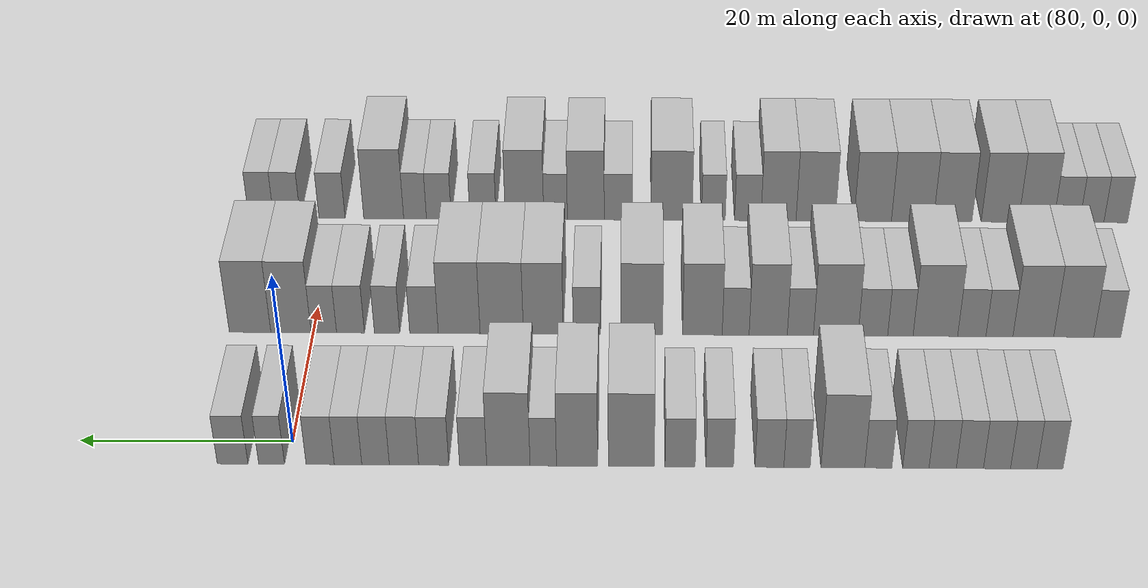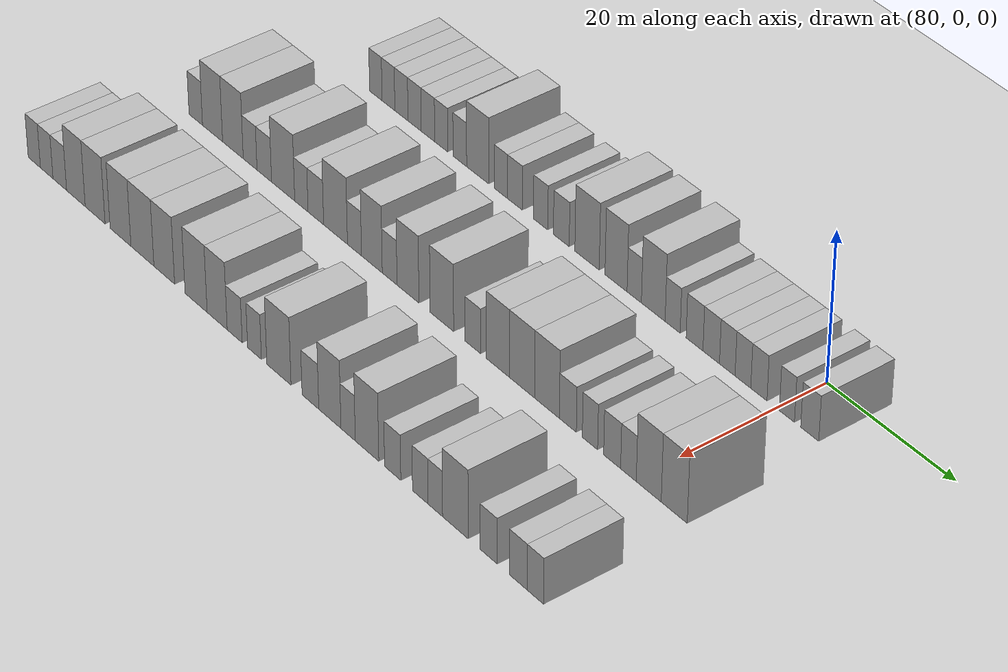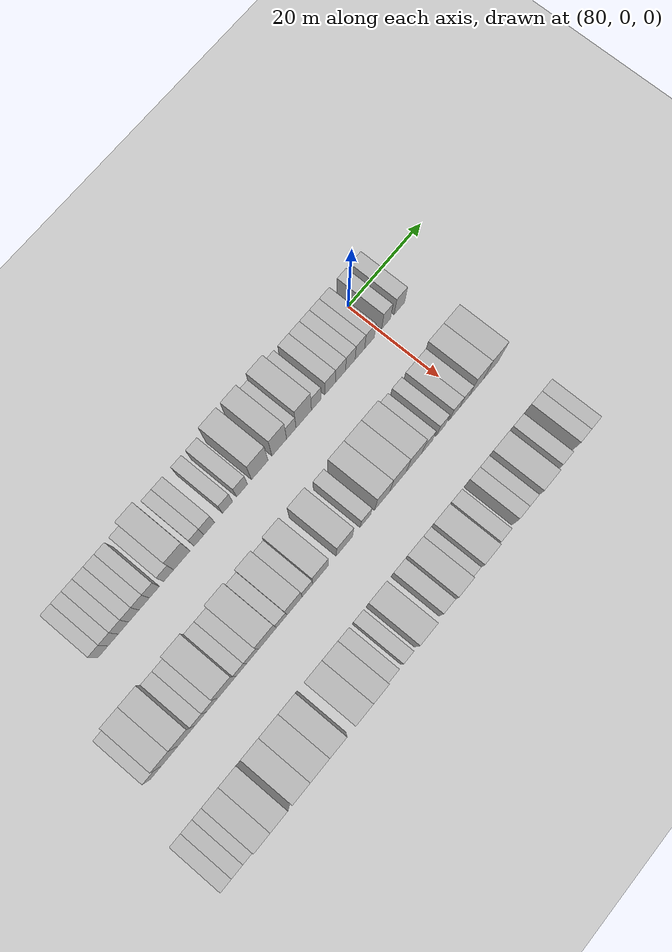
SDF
<sdf version="1.6">
 <world name="default">
  <include>
   <name>ground_plane_2</name>
   <uri>model://HANNAS_ground_plane</uri>
   <pose>100 0 0  0 0 0</pose>
  </include>
  <model name="building_579">
   <static>1</static>
   <pose>82.0000 -70.6880 0 0.000000 0.000000 0.000000</pose>
   <link name="link">
    <pose>0 0 3.00 0 0 0</pose>
    <collision name="collision"><geometry><box><size>10.0000 2.4031 6.0000</size></box></geometry></collision>
    <visual name="visual">
     <cast_shadows>0</cast_shadows>
     <geometry><box><size>10.0000 2.4031 6.0000</size></box></geometry>
     <material>
      <script>
       <uri>model://HANNAS_wall/materials/scripts</uri>
       <uri>model://HANNAS_wall/materials/textures</uri>
       <name>vrc/HANNAS_wall</name>
      </script>
     </material>
    </visual>
   </link>
  </model>
  <model name="building_580">
   <static>1</static>
   <pose>82.0000 -68.2582 0 0.000000 0.000000 0.000000</pose>
   <link name="link">
    <pose>0 0 3.00 0 0 0</pose>
    <collision name="collision"><geometry><box><size>10.0000 2.4565 6.0000</size></box></geometry></collision>
    <visual name="visual">
     <cast_shadows>0</cast_shadows>
     <geometry><box><size>10.0000 2.4565 6.0000</size></box></geometry>
     <material>
      <script>
       <uri>model://HANNAS_wall/materials/scripts</uri>
       <uri>model://HANNAS_wall/materials/textures</uri>
       <name>vrc/HANNAS_wall</name>
      </script>
     </material>
    </visual>
   </link>
  </model>
  <model name="building_581">
   <static>1</static>
   <pose>82.0000 -65.7756 0 0.000000 0.000000 0.000000</pose>
   <link name="link">
    <pose>0 0 3.00 0 0 0</pose>
    <collision name="collision"><geometry><box><size>10.0000 2.5086 6.0000</size></box></geometry></collision>
    <visual name="visual">
     <cast_shadows>0</cast_shadows>
     <geometry><box><size>10.0000 2.5086 6.0000</size></box></geometry>
     <material>
      <script>
       <uri>model://HANNAS_wall/materials/scripts</uri>
       <uri>model://HANNAS_wall/materials/textures</uri>
       <name>vrc/HANNAS_wall</name>
      </script>
     </material>
    </visual>
   </link>
  </model>
  <model name="building_582">
   <static>1</static>
   <pose>82.0000 -63.2646 0 0.000000 0.000000 0.000000</pose>
   <link name="link">
    <pose>0 0 3.00 0 0 0</pose>
    <collision name="collision"><geometry><box><size>10.0000 2.5133 6.0000</size></box></geometry></collision>
    <visual name="visual">
     <cast_shadows>0</cast_shadows>
     <geometry><box><size>10.0000 2.5133 6.0000</size></box></geometry>
     <material>
      <script>
       <uri>model://HANNAS_wall/materials/scripts</uri>
       <uri>model://HANNAS_wall/materials/textures</uri>
       <name>vrc/HANNAS_wall</name>
      </script>
     </material>
    </visual>
   </link>
  </model>
  <model name="building_583">
   <static>1</static>
   <pose>82.0000 -60.7432 0 0.000000 0.000000 0.000000</pose>
   <link name="link">
    <pose>0 0 3.00 0 0 0</pose>
    <collision name="collision"><geometry><box><size>10.0000 2.5296 6.0000</size></box></geometry></collision>
    <visual name="visual">
     <cast_shadows>0</cast_shadows>
     <geometry><box><size>10.0000 2.5296 6.0000</size></box></geometry>
     <material>
      <script>
       <uri>model://HANNAS_wall/materials/scripts</uri>
       <uri>model://HANNAS_wall/materials/textures</uri>
       <name>vrc/HANNAS_wall</name>
      </script>
     </material>
    </visual>
   </link>
  </model>
  <model name="building_584">
   <static>1</static>
   <pose>82.0000 -58.2561 0 0.000000 0.000000 0.000000</pose>
   <link name="link">
    <pose>0 0 3.00 0 0 0</pose>
    <collision name="collision"><geometry><box><size>10.0000 2.4445 6.0000</size></box></geometry></collision>
    <visual name="visual">
     <cast_shadows>0</cast_shadows>
     <geometry><box><size>10.0000 2.4445 6.0000</size></box></geometry>
     <material>
      <script>
       <uri>model://HANNAS_wall/materials/scripts</uri>
       <uri>model://HANNAS_wall/materials/textures</uri>
       <name>vrc/HANNAS_wall</name>
      </script>
     </material>
    </visual>
   </link>
  </model>
  <model name="building_585">
   <static>1</static>
   <pose>82.0000 -54.7732 0 0.000000 0.000000 0.000000</pose>
   <link name="link">
    <pose>0 0 3.00 0 0 0</pose>
    <collision name="collision"><geometry><box><size>10.0000 2.5215 6.0000</size></box></geometry></collision>
    <visual name="visual">
     <cast_shadows>0</cast_shadows>
     <geometry><box><size>10.0000 2.5215 6.0000</size></box></geometry>
     <material>
      <script>
       <uri>model://HANNAS_wall/materials/scripts</uri>
       <uri>model://HANNAS_wall/materials/textures</uri>
       <name>vrc/HANNAS_wall</name>
      </script>
     </material>
    </visual>
   </link>
  </model>
  <model name="building_586">
   <static>1</static>
   <pose>82.0000 -51.4835 0 0.000000 0.000000 0.000000</pose>
   <link name="link">
    <pose>0 0 4.50 0 0 0</pose>
    <collision name="collision"><geometry><box><size>10.0000 4.0580 9.0000</size></box></geometry></collision>
    <visual name="visual">
     <cast_shadows>0</cast_shadows>
     <geometry><box><size>10.0000 4.0580 9.0000</size></box></geometry>
     <material>
      <script>
       <uri>model://HANNAS_wall/materials/scripts</uri>
       <uri>model://HANNAS_wall/materials/textures</uri>
       <name>vrc/HANNAS_wall</name>
      </script>
     </material>
    </visual>
   </link>
  </model>
  <model name="building_587">
   <static>1</static>
   <pose>82.0000 -47.2335 0 0.000000 0.000000 0.000000</pose>
   <link name="link">
    <pose>0 0 3.00 0 0 0</pose>
    <collision name="collision"><geometry><box><size>10.0000 2.4420 6.0000</size></box></geometry></collision>
    <visual name="visual">
     <cast_shadows>0</cast_shadows>
     <geometry><box><size>10.0000 2.4420 6.0000</size></box></geometry>
     <material>
      <script>
       <uri>model://HANNAS_wall/materials/scripts</uri>
       <uri>model://HANNAS_wall/materials/textures</uri>
       <name>vrc/HANNAS_wall</name>
      </script>
     </material>
    </visual>
   </link>
  </model>
  <model name="building_588">
   <static>1</static>
   <pose>82.0000 -44.6729 0 0.000000 0.000000 0.000000</pose>
   <link name="link">
    <pose>0 0 3.00 0 0 0</pose>
    <collision name="collision"><geometry><box><size>10.0000 2.6791 6.0000</size></box></geometry></collision>
    <visual name="visual">
     <cast_shadows>0</cast_shadows>
     <geometry><box><size>10.0000 2.6791 6.0000</size></box></geometry>
     <material>
      <script>
       <uri>model://HANNAS_wall/materials/scripts</uri>
       <uri>model://HANNAS_wall/materials/textures</uri>
       <name>vrc/HANNAS_wall</name>
      </script>
     </material>
    </visual>
   </link>
  </model>
  <model name="building_589">
   <static>1</static>
   <pose>82.0000 -40.0522 0 0.000000 0.000000 0.000000</pose>
   <link name="link">
    <pose>0 0 3.00 0 0 0</pose>
    <collision name="collision"><geometry><box><size>10.0000 2.5622 6.0000</size></box></geometry></collision>
    <visual name="visual">
     <cast_shadows>0</cast_shadows>
     <geometry><box><size>10.0000 2.5622 6.0000</size></box></geometry>
     <material>
      <script>
       <uri>model://HANNAS_wall/materials/scripts</uri>
       <uri>model://HANNAS_wall/materials/textures</uri>
       <name>vrc/HANNAS_wall</name>
      </script>
     </material>
    </visual>
   </link>
  </model>
  <model name="building_590">
   <static>1</static>
   <pose>82.0000 -36.3736 0 0.000000 0.000000 0.000000</pose>
   <link name="link">
    <pose>0 0 3.00 0 0 0</pose>
    <collision name="collision"><geometry><box><size>10.0000 2.7950 6.0000</size></box></geometry></collision>
    <visual name="visual">
     <cast_shadows>0</cast_shadows>
     <geometry><box><size>10.0000 2.7950 6.0000</size></box></geometry>
     <material>
      <script>
       <uri>model://HANNAS_wall/materials/scripts</uri>
       <uri>model://HANNAS_wall/materials/textures</uri>
       <name>vrc/HANNAS_wall</name>
      </script>
     </material>
    </visual>
   </link>
  </model>
  <model name="building_591">
   <static>1</static>
   <pose>82.0000 -31.8440 0 0.000000 0.000000 0.000000</pose>
   <link name="link">
    <pose>0 0 4.50 0 0 0</pose>
    <collision name="collision"><geometry><box><size>10.0000 4.2642 9.0000</size></box></geometry></collision>
    <visual name="visual">
     <cast_shadows>0</cast_shadows>
     <geometry><box><size>10.0000 4.2642 9.0000</size></box></geometry>
     <material>
      <script>
       <uri>model://HANNAS_wall/materials/scripts</uri>
       <uri>model://HANNAS_wall/materials/textures</uri>
       <name>vrc/HANNAS_wall</name>
      </script>
     </material>
    </visual>
   </link>
  </model>
  <model name="building_592">
   <static>1</static>
   <pose>82.0000 -26.8067 0 0.000000 0.000000 0.000000</pose>
   <link name="link">
    <pose>0 0 4.50 0 0 0</pose>
    <collision name="collision"><geometry><box><size>10.0000 3.8104 9.0000</size></box></geometry></collision>
    <visual name="visual">
     <cast_shadows>0</cast_shadows>
     <geometry><box><size>10.0000 3.8104 9.0000</size></box></geometry>
     <material>
      <script>
       <uri>model://HANNAS_wall/materials/scripts</uri>
       <uri>model://HANNAS_wall/materials/textures</uri>
       <name>vrc/HANNAS_wall</name>
      </script>
     </material>
    </visual>
   </link>
  </model>
  <model name="building_593">
   <static>1</static>
   <pose>82.0000 -23.6731 0 0.000000 0.000000 0.000000</pose>
   <link name="link">
    <pose>0 0 3.00 0 0 0</pose>
    <collision name="collision"><geometry><box><size>10.0000 2.4570 6.0000</size></box></geometry></collision>
    <visual name="visual">
     <cast_shadows>0</cast_shadows>
     <geometry><box><size>10.0000 2.4570 6.0000</size></box></geometry>
     <material>
      <script>
       <uri>model://HANNAS_wall/materials/scripts</uri>
       <uri>model://HANNAS_wall/materials/textures</uri>
       <name>vrc/HANNAS_wall</name>
      </script>
     </material>
    </visual>
   </link>
  </model>
  <model name="building_594">
   <static>1</static>
   <pose>82.0000 -20.4306 0 0.000000 0.000000 0.000000</pose>
   <link name="link">
    <pose>0 0 4.50 0 0 0</pose>
    <collision name="collision"><geometry><box><size>10.0000 4.0280 9.0000</size></box></geometry></collision>
    <visual name="visual">
     <cast_shadows>0</cast_shadows>
     <geometry><box><size>10.0000 4.0280 9.0000</size></box></geometry>
     <material>
      <script>
       <uri>model://HANNAS_wall/materials/scripts</uri>
       <uri>model://HANNAS_wall/materials/textures</uri>
       <name>vrc/HANNAS_wall</name>
      </script>
     </material>
    </visual>
   </link>
  </model>
  <model name="building_595">
   <static>1</static>
   <pose>82.0000 -17.1503 0 0.000000 0.000000 0.000000</pose>
   <link name="link">
    <pose>0 0 3.00 0 0 0</pose>
    <collision name="collision"><geometry><box><size>10.0000 2.5325 6.0000</size></box></geometry></collision>
    <visual name="visual">
     <cast_shadows>0</cast_shadows>
     <geometry><box><size>10.0000 2.5325 6.0000</size></box></geometry>
     <material>
      <script>
       <uri>model://HANNAS_wall/materials/scripts</uri>
       <uri>model://HANNAS_wall/materials/textures</uri>
       <name>vrc/HANNAS_wall</name>
      </script>
     </material>
    </visual>
   </link>
  </model>
  <model name="building_596">
   <static>1</static>
   <pose>82.0000 -13.4826 0 0.000000 0.000000 0.000000</pose>
   <link name="link">
    <pose>0 0 3.00 0 0 0</pose>
    <collision name="collision"><geometry><box><size>10.0000 2.8029 6.0000</size></box></geometry></collision>
    <visual name="visual">
     <cast_shadows>0</cast_shadows>
     <geometry><box><size>10.0000 2.8029 6.0000</size></box></geometry>
     <material>
      <script>
       <uri>model://HANNAS_wall/materials/scripts</uri>
       <uri>model://HANNAS_wall/materials/textures</uri>
       <name>vrc/HANNAS_wall</name>
      </script>
     </material>
    </visual>
   </link>
  </model>
  <model name="building_597">
   <static>1</static>
   <pose>82.0000 -10.7177 0 0.000000 0.000000 0.000000</pose>
   <link name="link">
    <pose>0 0 3.00 0 0 0</pose>
    <collision name="collision"><geometry><box><size>10.0000 2.7270 6.0000</size></box></geometry></collision>
    <visual name="visual">
     <cast_shadows>0</cast_shadows>
     <geometry><box><size>10.0000 2.7270 6.0000</size></box></geometry>
     <material>
      <script>
       <uri>model://HANNAS_wall/materials/scripts</uri>
       <uri>model://HANNAS_wall/materials/textures</uri>
       <name>vrc/HANNAS_wall</name>
      </script>
     </material>
    </visual>
   </link>
  </model>
  <model name="building_598">
   <static>1</static>
   <pose>82.0000 -8.0726 0 0.000000 0.000000 0.000000</pose>
   <link name="link">
    <pose>0 0 3.00 0 0 0</pose>
    <collision name="collision"><geometry><box><size>10.0000 2.5632 6.0000</size></box></geometry></collision>
    <visual name="visual">
     <cast_shadows>0</cast_shadows>
     <geometry><box><size>10.0000 2.5632 6.0000</size></box></geometry>
     <material>
      <script>
       <uri>model://HANNAS_wall/materials/scripts</uri>
       <uri>model://HANNAS_wall/materials/textures</uri>
       <name>vrc/HANNAS_wall</name>
      </script>
     </material>
    </visual>
   </link>
  </model>
  <model name="building_599">
   <static>1</static>
   <pose>82.0000 -5.5092 0 0.000000 0.000000 0.000000</pose>
   <link name="link">
    <pose>0 0 3.00 0 0 0</pose>
    <collision name="collision"><geometry><box><size>10.0000 2.5637 6.0000</size></box></geometry></collision>
    <visual name="visual">
     <cast_shadows>0</cast_shadows>
     <geometry><box><size>10.0000 2.5637 6.0000</size></box></geometry>
     <material>
      <script>
       <uri>model://HANNAS_wall/materials/scripts</uri>
       <uri>model://HANNAS_wall/materials/textures</uri>
       <name>vrc/HANNAS_wall</name>
      </script>
     </material>
    </visual>
   </link>
  </model>
  <model name="building_600">
   <static>1</static>
   <pose>82.0000 -2.9156 0 0.000000 0.000000 0.000000</pose>
   <link name="link">
    <pose>0 0 3.00 0 0 0</pose>
    <collision name="collision"><geometry><box><size>10.0000 2.6234 6.0000</size></box></geometry></collision>
    <visual name="visual">
     <cast_shadows>0</cast_shadows>
     <geometry><box><size>10.0000 2.6234 6.0000</size></box></geometry>
     <material>
      <script>
       <uri>model://HANNAS_wall/materials/scripts</uri>
       <uri>model://HANNAS_wall/materials/textures</uri>
       <name>vrc/HANNAS_wall</name>
      </script>
     </material>
    </visual>
   </link>
  </model>
  <model name="building_601">
   <static>1</static>
   <pose>82.0000 1.6002 0 0.000000 0.000000 0.000000</pose>
   <link name="link">
    <pose>0 0 3.00 0 0 0</pose>
    <collision name="collision"><geometry><box><size>10.0000 2.4083 6.0000</size></box></geometry></collision>
    <visual name="visual">
     <cast_shadows>0</cast_shadows>
     <geometry><box><size>10.0000 2.4083 6.0000</size></box></geometry>
     <material>
      <script>
       <uri>model://HANNAS_wall/materials/scripts</uri>
       <uri>model://HANNAS_wall/materials/textures</uri>
       <name>vrc/HANNAS_wall</name>
      </script>
     </material>
    </visual>
   </link>
  </model>
  <model name="building_602">
   <static>1</static>
   <pose>82.0000 5.2338 0 0.000000 0.000000 0.000000</pose>
   <link name="link">
    <pose>0 0 3.00 0 0 0</pose>
    <collision name="collision"><geometry><box><size>10.0000 2.8590 6.0000</size></box></geometry></collision>
    <visual name="visual">
     <cast_shadows>0</cast_shadows>
     <geometry><box><size>10.0000 2.8590 6.0000</size></box></geometry>
     <material>
      <script>
       <uri>model://HANNAS_wall/materials/scripts</uri>
       <uri>model://HANNAS_wall/materials/textures</uri>
       <name>vrc/HANNAS_wall</name>
      </script>
     </material>
    </visual>
   </link>
  </model>
  <model name="building_744">
   <static>1</static>
   <pose>101.0000 -79.2600 0 0.000000 0.000000 0.000000</pose>
   <link name="link">
    <pose>0 0 3.00 0 0 0</pose>
    <collision name="collision"><geometry><box><size>10.0000 2.6936 6.0000</size></box></geometry></collision>
    <visual name="visual">
     <cast_shadows>0</cast_shadows>
     <geometry><box><size>10.0000 2.6936 6.0000</size></box></geometry>
     <material>
      <script>
       <uri>model://HANNAS_wall/materials/scripts</uri>
       <uri>model://HANNAS_wall/materials/textures</uri>
       <name>vrc/HANNAS_wall</name>
      </script>
     </material>
    </visual>
   </link>
  </model>
  <model name="building_745">
   <static>1</static>
   <pose>101.0000 -75.9183 0 0.000000 0.000000 0.000000</pose>
   <link name="link">
    <pose>0 0 4.50 0 0 0</pose>
    <collision name="collision"><geometry><box><size>10.0000 3.9898 9.0000</size></box></geometry></collision>
    <visual name="visual">
     <cast_shadows>0</cast_shadows>
     <geometry><box><size>10.0000 3.9898 9.0000</size></box></geometry>
     <material>
      <script>
       <uri>model://HANNAS_wall/materials/scripts</uri>
       <uri>model://HANNAS_wall/materials/textures</uri>
       <name>vrc/HANNAS_wall</name>
      </script>
     </material>
    </visual>
   </link>
  </model>
  <model name="building_746">
   <static>1</static>
   <pose>101.0000 -71.8906 0 0.000000 0.000000 0.000000</pose>
   <link name="link">
    <pose>0 0 4.50 0 0 0</pose>
    <collision name="collision"><geometry><box><size>10.0000 4.0656 9.0000</size></box></geometry></collision>
    <visual name="visual">
     <cast_shadows>0</cast_shadows>
     <geometry><box><size>10.0000 4.0656 9.0000</size></box></geometry>
     <material>
      <script>
       <uri>model://HANNAS_wall/materials/scripts</uri>
       <uri>model://HANNAS_wall/materials/textures</uri>
       <name>vrc/HANNAS_wall</name>
      </script>
     </material>
    </visual>
   </link>
  </model>
  <model name="building_747">
   <static>1</static>
   <pose>101.0000 -68.5126 0 0.000000 0.000000 0.000000</pose>
   <link name="link">
    <pose>0 0 3.00 0 0 0</pose>
    <collision name="collision"><geometry><box><size>10.0000 2.6904 6.0000</size></box></geometry></collision>
    <visual name="visual">
     <cast_shadows>0</cast_shadows>
     <geometry><box><size>10.0000 2.6904 6.0000</size></box></geometry>
     <material>
      <script>
       <uri>model://HANNAS_wall/materials/scripts</uri>
       <uri>model://HANNAS_wall/materials/textures</uri>
       <name>vrc/HANNAS_wall</name>
      </script>
     </material>
    </visual>
   </link>
  </model>
  <model name="building_748">
   <static>1</static>
   <pose>101.0000 -65.7571 0 0.000000 0.000000 0.000000</pose>
   <link name="link">
    <pose>0 0 3.00 0 0 0</pose>
    <collision name="collision"><geometry><box><size>10.0000 2.8206 6.0000</size></box></geometry></collision>
    <visual name="visual">
     <cast_shadows>0</cast_shadows>
     <geometry><box><size>10.0000 2.8206 6.0000</size></box></geometry>
     <material>
      <script>
       <uri>model://HANNAS_wall/materials/scripts</uri>
       <uri>model://HANNAS_wall/materials/textures</uri>
       <name>vrc/HANNAS_wall</name>
      </script>
     </material>
    </visual>
   </link>
  </model>
  <model name="building_749">
   <static>1</static>
   <pose>101.0000 -62.1238 0 0.000000 0.000000 0.000000</pose>
   <link name="link">
    <pose>0 0 4.50 0 0 0</pose>
    <collision name="collision"><geometry><box><size>10.0000 4.4460 9.0000</size></box></geometry></collision>
    <visual name="visual">
     <cast_shadows>0</cast_shadows>
     <geometry><box><size>10.0000 4.4460 9.0000</size></box></geometry>
     <material>
      <script>
       <uri>model://HANNAS_wall/materials/scripts</uri>
       <uri>model://HANNAS_wall/materials/textures</uri>
       <name>vrc/HANNAS_wall</name>
      </script>
     </material>
    </visual>
   </link>
  </model>
  <model name="building_750">
   <static>1</static>
   <pose>101.0000 -58.6333 0 0.000000 0.000000 0.000000</pose>
   <link name="link">
    <pose>0 0 3.00 0 0 0</pose>
    <collision name="collision"><geometry><box><size>10.0000 2.5351 6.0000</size></box></geometry></collision>
    <visual name="visual">
     <cast_shadows>0</cast_shadows>
     <geometry><box><size>10.0000 2.5351 6.0000</size></box></geometry>
     <material>
      <script>
       <uri>model://HANNAS_wall/materials/scripts</uri>
       <uri>model://HANNAS_wall/materials/textures</uri>
       <name>vrc/HANNAS_wall</name>
      </script>
     </material>
    </visual>
   </link>
  </model>
  <model name="building_751">
   <static>1</static>
   <pose>101.0000 -55.8923 0 0.000000 0.000000 0.000000</pose>
   <link name="link">
    <pose>0 0 3.00 0 0 0</pose>
    <collision name="collision"><geometry><box><size>10.0000 2.9469 6.0000</size></box></geometry></collision>
    <visual name="visual">
     <cast_shadows>0</cast_shadows>
     <geometry><box><size>10.0000 2.9469 6.0000</size></box></geometry>
     <material>
      <script>
       <uri>model://HANNAS_wall/materials/scripts</uri>
       <uri>model://HANNAS_wall/materials/textures</uri>
       <name>vrc/HANNAS_wall</name>
      </script>
     </material>
    </visual>
   </link>
  </model>
  <model name="building_752">
   <static>1</static>
   <pose>101.0000 -52.1880 0 0.000000 0.000000 0.000000</pose>
   <link name="link">
    <pose>0 0 4.50 0 0 0</pose>
    <collision name="collision"><geometry><box><size>10.0000 4.4617 9.0000</size></box></geometry></collision>
    <visual name="visual">
     <cast_shadows>0</cast_shadows>
     <geometry><box><size>10.0000 4.4617 9.0000</size></box></geometry>
     <material>
      <script>
       <uri>model://HANNAS_wall/materials/scripts</uri>
       <uri>model://HANNAS_wall/materials/textures</uri>
       <name>vrc/HANNAS_wall</name>
      </script>
     </material>
    </visual>
   </link>
  </model>
  <model name="building_753">
   <static>1</static>
   <pose>101.0000 -48.6539 0 0.000000 0.000000 0.000000</pose>
   <link name="link">
    <pose>0 0 3.00 0 0 0</pose>
    <collision name="collision"><geometry><box><size>10.0000 2.6066 6.0000</size></box></geometry></collision>
    <visual name="visual">
     <cast_shadows>0</cast_shadows>
     <geometry><box><size>10.0000 2.6066 6.0000</size></box></geometry>
     <material>
      <script>
       <uri>model://HANNAS_wall/materials/scripts</uri>
       <uri>model://HANNAS_wall/materials/textures</uri>
       <name>vrc/HANNAS_wall</name>
      </script>
     </material>
    </visual>
   </link>
  </model>
  <model name="building_754">
   <static>1</static>
   <pose>101.0000 -45.4434 0 0.000000 0.000000 0.000000</pose>
   <link name="link">
    <pose>0 0 4.50 0 0 0</pose>
    <collision name="collision"><geometry><box><size>10.0000 3.8144 9.0000</size></box></geometry></collision>
    <visual name="visual">
     <cast_shadows>0</cast_shadows>
     <geometry><box><size>10.0000 3.8144 9.0000</size></box></geometry>
     <material>
      <script>
       <uri>model://HANNAS_wall/materials/scripts</uri>
       <uri>model://HANNAS_wall/materials/textures</uri>
       <name>vrc/HANNAS_wall</name>
      </script>
     </material>
    </visual>
   </link>
  </model>
  <model name="building_755">
   <static>1</static>
   <pose>101.0000 -42.1920 0 0.000000 0.000000 0.000000</pose>
   <link name="link">
    <pose>0 0 3.00 0 0 0</pose>
    <collision name="collision"><geometry><box><size>10.0000 2.6882 6.0000</size></box></geometry></collision>
    <visual name="visual">
     <cast_shadows>0</cast_shadows>
     <geometry><box><size>10.0000 2.6882 6.0000</size></box></geometry>
     <material>
      <script>
       <uri>model://HANNAS_wall/materials/scripts</uri>
       <uri>model://HANNAS_wall/materials/textures</uri>
       <name>vrc/HANNAS_wall</name>
      </script>
     </material>
    </visual>
   </link>
  </model>
  <model name="building_756">
   <static>1</static>
   <pose>101.0000 -38.8699 0 0.000000 0.000000 0.000000</pose>
   <link name="link">
    <pose>0 0 4.50 0 0 0</pose>
    <collision name="collision"><geometry><box><size>10.0000 3.9562 9.0000</size></box></geometry></collision>
    <visual name="visual">
     <cast_shadows>0</cast_shadows>
     <geometry><box><size>10.0000 3.9562 9.0000</size></box></geometry>
     <material>
      <script>
       <uri>model://HANNAS_wall/materials/scripts</uri>
       <uri>model://HANNAS_wall/materials/textures</uri>
       <name>vrc/HANNAS_wall</name>
      </script>
     </material>
    </visual>
   </link>
  </model>
  <model name="building_757">
   <static>1</static>
   <pose>101.0000 -32.7959 0 0.000000 0.000000 0.000000</pose>
   <link name="link">
    <pose>0 0 4.50 0 0 0</pose>
    <collision name="collision"><geometry><box><size>10.0000 4.1918 9.0000</size></box></geometry></collision>
    <visual name="visual">
     <cast_shadows>0</cast_shadows>
     <geometry><box><size>10.0000 4.1918 9.0000</size></box></geometry>
     <material>
      <script>
       <uri>model://HANNAS_wall/materials/scripts</uri>
       <uri>model://HANNAS_wall/materials/textures</uri>
       <name>vrc/HANNAS_wall</name>
      </script>
     </material>
    </visual>
   </link>
  </model>
  <model name="building_758">
   <static>1</static>
   <pose>101.0000 -27.3338 0 0.000000 0.000000 0.000000</pose>
   <link name="link">
    <pose>0 0 3.00 0 0 0</pose>
    <collision name="collision"><geometry><box><size>10.0000 2.7322 6.0000</size></box></geometry></collision>
    <visual name="visual">
     <cast_shadows>0</cast_shadows>
     <geometry><box><size>10.0000 2.7322 6.0000</size></box></geometry>
     <material>
      <script>
       <uri>model://HANNAS_wall/materials/scripts</uri>
       <uri>model://HANNAS_wall/materials/textures</uri>
       <name>vrc/HANNAS_wall</name>
      </script>
     </material>
    </visual>
   </link>
  </model>
  <model name="building_759">
   <static>1</static>
   <pose>101.0000 -22.9792 0 0.000000 0.000000 0.000000</pose>
   <link name="link">
    <pose>0 0 4.50 0 0 0</pose>
    <collision name="collision"><geometry><box><size>10.0000 3.9771 9.0000</size></box></geometry></collision>
    <visual name="visual">
     <cast_shadows>0</cast_shadows>
     <geometry><box><size>10.0000 3.9771 9.0000</size></box></geometry>
     <material>
      <script>
       <uri>model://HANNAS_wall/materials/scripts</uri>
       <uri>model://HANNAS_wall/materials/textures</uri>
       <name>vrc/HANNAS_wall</name>
      </script>
     </material>
    </visual>
   </link>
  </model>
  <model name="building_760">
   <static>1</static>
   <pose>101.0000 -18.8259 0 0.000000 0.000000 0.000000</pose>
   <link name="link">
    <pose>0 0 4.50 0 0 0</pose>
    <collision name="collision"><geometry><box><size>10.0000 4.3295 9.0000</size></box></geometry></collision>
    <visual name="visual">
     <cast_shadows>0</cast_shadows>
     <geometry><box><size>10.0000 4.3295 9.0000</size></box></geometry>
     <material>
      <script>
       <uri>model://HANNAS_wall/materials/scripts</uri>
       <uri>model://HANNAS_wall/materials/textures</uri>
       <name>vrc/HANNAS_wall</name>
      </script>
     </material>
    </visual>
   </link>
  </model>
  <model name="building_761">
   <static>1</static>
   <pose>101.0000 -14.5683 0 0.000000 0.000000 0.000000</pose>
   <link name="link">
    <pose>0 0 4.50 0 0 0</pose>
    <collision name="collision"><geometry><box><size>10.0000 4.1857 9.0000</size></box></geometry></collision>
    <visual name="visual">
     <cast_shadows>0</cast_shadows>
     <geometry><box><size>10.0000 4.1857 9.0000</size></box></geometry>
     <material>
      <script>
       <uri>model://HANNAS_wall/materials/scripts</uri>
       <uri>model://HANNAS_wall/materials/textures</uri>
       <name>vrc/HANNAS_wall</name>
      </script>
     </material>
    </visual>
   </link>
  </model>
  <model name="building_762">
   <static>1</static>
   <pose>101.0000 -11.0465 0 0.000000 0.000000 0.000000</pose>
   <link name="link">
    <pose>0 0 3.00 0 0 0</pose>
    <collision name="collision"><geometry><box><size>10.0000 2.8580 6.0000</size></box></geometry></collision>
    <visual name="visual">
     <cast_shadows>0</cast_shadows>
     <geometry><box><size>10.0000 2.8580 6.0000</size></box></geometry>
     <material>
      <script>
       <uri>model://HANNAS_wall/materials/scripts</uri>
       <uri>model://HANNAS_wall/materials/textures</uri>
       <name>vrc/HANNAS_wall</name>
      </script>
     </material>
    </visual>
   </link>
  </model>
  <model name="building_763">
   <static>1</static>
   <pose>101.0000 -7.3511 0 0.000000 0.000000 0.000000</pose>
   <link name="link">
    <pose>0 0 3.00 0 0 0</pose>
    <collision name="collision"><geometry><box><size>10.0000 2.5328 6.0000</size></box></geometry></collision>
    <visual name="visual">
     <cast_shadows>0</cast_shadows>
     <geometry><box><size>10.0000 2.5328 6.0000</size></box></geometry>
     <material>
      <script>
       <uri>model://HANNAS_wall/materials/scripts</uri>
       <uri>model://HANNAS_wall/materials/textures</uri>
       <name>vrc/HANNAS_wall</name>
      </script>
     </material>
    </visual>
   </link>
  </model>
  <model name="building_764">
   <static>1</static>
   <pose>101.0000 -3.6892 0 0.000000 0.000000 0.000000</pose>
   <link name="link">
    <pose>0 0 3.00 0 0 0</pose>
    <collision name="collision"><geometry><box><size>10.0000 2.7911 6.0000</size></box></geometry></collision>
    <visual name="visual">
     <cast_shadows>0</cast_shadows>
     <geometry><box><size>10.0000 2.7911 6.0000</size></box></geometry>
     <material>
      <script>
       <uri>model://HANNAS_wall/materials/scripts</uri>
       <uri>model://HANNAS_wall/materials/textures</uri>
       <name>vrc/HANNAS_wall</name>
      </script>
     </material>
    </visual>
   </link>
  </model>
  <model name="building_765">
   <static>1</static>
   <pose>101.0000 -1.0193 0 0.000000 0.000000 0.000000</pose>
   <link name="link">
    <pose>0 0 3.00 0 0 0</pose>
    <collision name="collision"><geometry><box><size>10.0000 2.5487 6.0000</size></box></geometry></collision>
    <visual name="visual">
     <cast_shadows>0</cast_shadows>
     <geometry><box><size>10.0000 2.5487 6.0000</size></box></geometry>
     <material>
      <script>
       <uri>model://HANNAS_wall/materials/scripts</uri>
       <uri>model://HANNAS_wall/materials/textures</uri>
       <name>vrc/HANNAS_wall</name>
      </script>
     </material>
    </visual>
   </link>
  </model>
  <model name="building_766">
   <static>1</static>
   <pose>101.0000 2.2712 0 0.000000 0.000000 0.000000</pose>
   <link name="link">
    <pose>0 0 4.50 0 0 0</pose>
    <collision name="collision"><geometry><box><size>10.0000 4.0321 9.0000</size></box></geometry></collision>
    <visual name="visual">
     <cast_shadows>0</cast_shadows>
     <geometry><box><size>10.0000 4.0321 9.0000</size></box></geometry>
     <material>
      <script>
       <uri>model://HANNAS_wall/materials/scripts</uri>
       <uri>model://HANNAS_wall/materials/textures</uri>
       <name>vrc/HANNAS_wall</name>
      </script>
     </material>
    </visual>
   </link>
  </model>
  <model name="building_767">
   <static>1</static>
   <pose>101.0000 6.3662 0 0.000000 0.000000 0.000000</pose>
   <link name="link">
    <pose>0 0 4.50 0 0 0</pose>
    <collision name="collision"><geometry><box><size>10.0000 4.1581 9.0000</size></box></geometry></collision>
    <visual name="visual">
     <cast_shadows>0</cast_shadows>
     <geometry><box><size>10.0000 4.1581 9.0000</size></box></geometry>
     <material>
      <script>
       <uri>model://HANNAS_wall/materials/scripts</uri>
       <uri>model://HANNAS_wall/materials/textures</uri>
       <name>vrc/HANNAS_wall</name>
      </script>
     </material>
    </visual>
   </link>
  </model>
  <model name="building_912">
   <static>1</static>
   <pose>120.0000 -83.4204 0 0.000000 0.000000 0.000000</pose>
   <link name="link">
    <pose>0 0 3.00 0 0 0</pose>
    <collision name="collision"><geometry><box><size>10.0000 2.5198 6.0000</size></box></geometry></collision>
    <visual name="visual">
     <cast_shadows>0</cast_shadows>
     <geometry><box><size>10.0000 2.5198 6.0000</size></box></geometry>
     <material>
      <script>
       <uri>model://HANNAS_wall/materials/scripts</uri>
       <uri>model://HANNAS_wall/materials/textures</uri>
       <name>vrc/HANNAS_wall</name>
      </script>
     </material>
    </visual>
   </link>
  </model>
  <model name="building_913">
   <static>1</static>
   <pose>120.0000 -80.8747 0 0.000000 0.000000 0.000000</pose>
   <link name="link">
    <pose>0 0 3.00 0 0 0</pose>
    <collision name="collision"><geometry><box><size>10.0000 2.5715 6.0000</size></box></geometry></collision>
    <visual name="visual">
     <cast_shadows>0</cast_shadows>
     <geometry><box><size>10.0000 2.5715 6.0000</size></box></geometry>
     <material>
      <script>
       <uri>model://HANNAS_wall/materials/scripts</uri>
       <uri>model://HANNAS_wall/materials/textures</uri>
       <name>vrc/HANNAS_wall</name>
      </script>
     </material>
    </visual>
   </link>
  </model>
  <model name="building_914">
   <static>1</static>
   <pose>120.0000 -78.2008 0 0.000000 0.000000 0.000000</pose>
   <link name="link">
    <pose>0 0 3.00 0 0 0</pose>
    <collision name="collision"><geometry><box><size>10.0000 2.7763 6.0000</size></box></geometry></collision>
    <visual name="visual">
     <cast_shadows>0</cast_shadows>
     <geometry><box><size>10.0000 2.7763 6.0000</size></box></geometry>
     <material>
      <script>
       <uri>model://HANNAS_wall/materials/scripts</uri>
       <uri>model://HANNAS_wall/materials/textures</uri>
       <name>vrc/HANNAS_wall</name>
      </script>
     </material>
    </visual>
   </link>
  </model>
  <model name="building_915">
   <static>1</static>
   <pose>120.0000 -74.9345 0 0.000000 0.000000 0.000000</pose>
   <link name="link">
    <pose>0 0 4.50 0 0 0</pose>
    <collision name="collision"><geometry><box><size>10.0000 3.7563 9.0000</size></box></geometry></collision>
    <visual name="visual">
     <cast_shadows>0</cast_shadows>
     <geometry><box><size>10.0000 3.7563 9.0000</size></box></geometry>
     <material>
      <script>
       <uri>model://HANNAS_wall/materials/scripts</uri>
       <uri>model://HANNAS_wall/materials/textures</uri>
       <name>vrc/HANNAS_wall</name>
      </script>
     </material>
    </visual>
   </link>
  </model>
  <model name="building_916">
   <static>1</static>
   <pose>120.0000 -71.0693 0 0.000000 0.000000 0.000000</pose>
   <link name="link">
    <pose>0 0 4.50 0 0 0</pose>
    <collision name="collision"><geometry><box><size>10.0000 3.9742 9.0000</size></box></geometry></collision>
    <visual name="visual">
     <cast_shadows>0</cast_shadows>
     <geometry><box><size>10.0000 3.9742 9.0000</size></box></geometry>
     <material>
      <script>
       <uri>model://HANNAS_wall/materials/scripts</uri>
       <uri>model://HANNAS_wall/materials/textures</uri>
       <name>vrc/HANNAS_wall</name>
      </script>
     </material>
    </visual>
   </link>
  </model>
  <model name="building_917">
   <static>1</static>
   <pose>120.0000 -66.0280 0 0.000000 0.000000 0.000000</pose>
   <link name="link">
    <pose>0 0 4.50 0 0 0</pose>
    <collision name="collision"><geometry><box><size>10.0000 4.1084 9.0000</size></box></geometry></collision>
    <visual name="visual">
     <cast_shadows>0</cast_shadows>
     <geometry><box><size>10.0000 4.1084 9.0000</size></box></geometry>
     <material>
      <script>
       <uri>model://HANNAS_wall/materials/scripts</uri>
       <uri>model://HANNAS_wall/materials/textures</uri>
       <name>vrc/HANNAS_wall</name>
      </script>
     </material>
    </visual>
   </link>
  </model>
  <model name="building_918">
   <static>1</static>
   <pose>120.0000 -61.7318 0 0.000000 0.000000 0.000000</pose>
   <link name="link">
    <pose>0 0 4.50 0 0 0</pose>
    <collision name="collision"><geometry><box><size>10.0000 4.4839 9.0000</size></box></geometry></collision>
    <visual name="visual">
     <cast_shadows>0</cast_shadows>
     <geometry><box><size>10.0000 4.4839 9.0000</size></box></geometry>
     <material>
      <script>
       <uri>model://HANNAS_wall/materials/scripts</uri>
       <uri>model://HANNAS_wall/materials/textures</uri>
       <name>vrc/HANNAS_wall</name>
      </script>
     </material>
    </visual>
   </link>
  </model>
  <model name="building_919">
   <static>1</static>
   <pose>120.0000 -57.4923 0 0.000000 0.000000 0.000000</pose>
   <link name="link">
    <pose>0 0 4.50 0 0 0</pose>
    <collision name="collision"><geometry><box><size>10.0000 3.9951 9.0000</size></box></geometry></collision>
    <visual name="visual">
     <cast_shadows>0</cast_shadows>
     <geometry><box><size>10.0000 3.9951 9.0000</size></box></geometry>
     <material>
      <script>
       <uri>model://HANNAS_wall/materials/scripts</uri>
       <uri>model://HANNAS_wall/materials/textures</uri>
       <name>vrc/HANNAS_wall</name>
      </script>
     </material>
    </visual>
   </link>
  </model>
  <model name="building_920">
   <static>1</static>
   <pose>120.0000 -51.3992 0 0.000000 0.000000 0.000000</pose>
   <link name="link">
    <pose>0 0 4.50 0 0 0</pose>
    <collision name="collision"><geometry><box><size>10.0000 4.1912 9.0000</size></box></geometry></collision>
    <visual name="visual">
     <cast_shadows>0</cast_shadows>
     <geometry><box><size>10.0000 4.1912 9.0000</size></box></geometry>
     <material>
      <script>
       <uri>model://HANNAS_wall/materials/scripts</uri>
       <uri>model://HANNAS_wall/materials/textures</uri>
       <name>vrc/HANNAS_wall</name>
      </script>
     </material>
    </visual>
   </link>
  </model>
  <model name="building_921">
   <static>1</static>
   <pose>120.0000 -47.4214 0 0.000000 0.000000 0.000000</pose>
   <link name="link">
    <pose>0 0 4.50 0 0 0</pose>
    <collision name="collision"><geometry><box><size>10.0000 3.7644 9.0000</size></box></geometry></collision>
    <visual name="visual">
     <cast_shadows>0</cast_shadows>
     <geometry><box><size>10.0000 3.7644 9.0000</size></box></geometry>
     <material>
      <script>
       <uri>model://HANNAS_wall/materials/scripts</uri>
       <uri>model://HANNAS_wall/materials/textures</uri>
       <name>vrc/HANNAS_wall</name>
      </script>
     </material>
    </visual>
   </link>
  </model>
  <model name="building_922">
   <static>1</static>
   <pose>120.0000 -44.1380 0 0.000000 0.000000 0.000000</pose>
   <link name="link">
    <pose>0 0 3.00 0 0 0</pose>
    <collision name="collision"><geometry><box><size>10.0000 2.8023 6.0000</size></box></geometry></collision>
    <visual name="visual">
     <cast_shadows>0</cast_shadows>
     <geometry><box><size>10.0000 2.8023 6.0000</size></box></geometry>
     <material>
      <script>
       <uri>model://HANNAS_wall/materials/scripts</uri>
       <uri>model://HANNAS_wall/materials/textures</uri>
       <name>vrc/HANNAS_wall</name>
      </script>
     </material>
    </visual>
   </link>
  </model>
  <model name="building_923">
   <static>1</static>
   <pose>120.0000 -40.4668 0 0.000000 0.000000 0.000000</pose>
   <link name="link">
    <pose>0 0 3.00 0 0 0</pose>
    <collision name="collision"><geometry><box><size>10.0000 2.5402 6.0000</size></box></geometry></collision>
    <visual name="visual">
     <cast_shadows>0</cast_shadows>
     <geometry><box><size>10.0000 2.5402 6.0000</size></box></geometry>
     <material>
      <script>
       <uri>model://HANNAS_wall/materials/scripts</uri>
       <uri>model://HANNAS_wall/materials/textures</uri>
       <name>vrc/HANNAS_wall</name>
      </script>
     </material>
    </visual>
   </link>
  </model>
  <model name="building_924">
   <static>1</static>
   <pose>120.0000 -35.9952 0 0.000000 0.000000 0.000000</pose>
   <link name="link">
    <pose>0 0 4.50 0 0 0</pose>
    <collision name="collision"><geometry><box><size>10.0000 4.4030 9.0000</size></box></geometry></collision>
    <visual name="visual">
     <cast_shadows>0</cast_shadows>
     <geometry><box><size>10.0000 4.4030 9.0000</size></box></geometry>
     <material>
      <script>
       <uri>model://HANNAS_wall/materials/scripts</uri>
       <uri>model://HANNAS_wall/materials/textures</uri>
       <name>vrc/HANNAS_wall</name>
      </script>
     </material>
    </visual>
   </link>
  </model>
  <model name="building_925">
   <static>1</static>
   <pose>120.0000 -30.2984 0 0.000000 0.000000 0.000000</pose>
   <link name="link">
    <pose>0 0 3.00 0 0 0</pose>
    <collision name="collision"><geometry><box><size>10.0000 2.9905 6.0000</size></box></geometry></collision>
    <visual name="visual">
     <cast_shadows>0</cast_shadows>
     <geometry><box><size>10.0000 2.9905 6.0000</size></box></geometry>
     <material>
      <script>
       <uri>model://HANNAS_wall/materials/scripts</uri>
       <uri>model://HANNAS_wall/materials/textures</uri>
       <name>vrc/HANNAS_wall</name>
      </script>
     </material>
    </visual>
   </link>
  </model>
  <model name="building_926">
   <static>1</static>
   <pose>120.0000 -26.8326 0 0.000000 0.000000 0.000000</pose>
   <link name="link">
    <pose>0 0 4.50 0 0 0</pose>
    <collision name="collision"><geometry><box><size>10.0000 3.9412 9.0000</size></box></geometry></collision>
    <visual name="visual">
     <cast_shadows>0</cast_shadows>
     <geometry><box><size>10.0000 3.9412 9.0000</size></box></geometry>
     <material>
      <script>
       <uri>model://HANNAS_wall/materials/scripts</uri>
       <uri>model://HANNAS_wall/materials/textures</uri>
       <name>vrc/HANNAS_wall</name>
      </script>
     </material>
    </visual>
   </link>
  </model>
  <model name="building_927">
   <static>1</static>
   <pose>120.0000 -23.5979 0 0.000000 0.000000 0.000000</pose>
   <link name="link">
    <pose>0 0 3.00 0 0 0</pose>
    <collision name="collision"><geometry><box><size>10.0000 2.5281 6.0000</size></box></geometry></collision>
    <visual name="visual">
     <cast_shadows>0</cast_shadows>
     <geometry><box><size>10.0000 2.5281 6.0000</size></box></geometry>
     <material>
      <script>
       <uri>model://HANNAS_wall/materials/scripts</uri>
       <uri>model://HANNAS_wall/materials/textures</uri>
       <name>vrc/HANNAS_wall</name>
      </script>
     </material>
    </visual>
   </link>
  </model>
  <model name="building_928">
   <static>1</static>
   <pose>120.0000 -20.2825 0 0.000000 0.000000 0.000000</pose>
   <link name="link">
    <pose>0 0 4.50 0 0 0</pose>
    <collision name="collision"><geometry><box><size>10.0000 4.1027 9.0000</size></box></geometry></collision>
    <visual name="visual">
     <cast_shadows>0</cast_shadows>
     <geometry><box><size>10.0000 4.1027 9.0000</size></box></geometry>
     <material>
      <script>
       <uri>model://HANNAS_wall/materials/scripts</uri>
       <uri>model://HANNAS_wall/materials/textures</uri>
       <name>vrc/HANNAS_wall</name>
      </script>
     </material>
    </visual>
   </link>
  </model>
  <model name="building_929">
   <static>1</static>
   <pose>120.0000 -15.8316 0 0.000000 0.000000 0.000000</pose>
   <link name="link">
    <pose>0 0 3.00 0 0 0</pose>
    <collision name="collision"><geometry><box><size>10.0000 2.7992 6.0000</size></box></geometry></collision>
    <visual name="visual">
     <cast_shadows>0</cast_shadows>
     <geometry><box><size>10.0000 2.7992 6.0000</size></box></geometry>
     <material>
      <script>
       <uri>model://HANNAS_wall/materials/scripts</uri>
       <uri>model://HANNAS_wall/materials/textures</uri>
       <name>vrc/HANNAS_wall</name>
      </script>
     </material>
    </visual>
   </link>
  </model>
  <model name="building_930">
   <static>1</static>
   <pose>120.0000 -11.1036 0 0.000000 0.000000 0.000000</pose>
   <link name="link">
    <pose>0 0 3.00 0 0 0</pose>
    <collision name="collision"><geometry><box><size>10.0000 2.6566 6.0000</size></box></geometry></collision>
    <visual name="visual">
     <cast_shadows>0</cast_shadows>
     <geometry><box><size>10.0000 2.6566 6.0000</size></box></geometry>
     <material>
      <script>
       <uri>model://HANNAS_wall/materials/scripts</uri>
       <uri>model://HANNAS_wall/materials/textures</uri>
       <name>vrc/HANNAS_wall</name>
      </script>
     </material>
    </visual>
   </link>
  </model>
  <model name="building_931">
   <static>1</static>
   <pose>120.0000 -8.5539 0 0.000000 0.000000 0.000000</pose>
   <link name="link">
    <pose>0 0 3.00 0 0 0</pose>
    <collision name="collision"><geometry><box><size>10.0000 2.4429 6.0000</size></box></geometry></collision>
    <visual name="visual">
     <cast_shadows>0</cast_shadows>
     <geometry><box><size>10.0000 2.4429 6.0000</size></box></geometry>
     <material>
      <script>
       <uri>model://HANNAS_wall/materials/scripts</uri>
       <uri>model://HANNAS_wall/materials/textures</uri>
       <name>vrc/HANNAS_wall</name>
      </script>
     </material>
    </visual>
   </link>
  </model>
  <model name="building_932">
   <static>1</static>
   <pose>120.0000 -5.1966 0 0.000000 0.000000 0.000000</pose>
   <link name="link">
    <pose>0 0 4.50 0 0 0</pose>
    <collision name="collision"><geometry><box><size>10.0000 4.2718 9.0000</size></box></geometry></collision>
    <visual name="visual">
     <cast_shadows>0</cast_shadows>
     <geometry><box><size>10.0000 4.2718 9.0000</size></box></geometry>
     <material>
      <script>
       <uri>model://HANNAS_wall/materials/scripts</uri>
       <uri>model://HANNAS_wall/materials/textures</uri>
       <name>vrc/HANNAS_wall</name>
      </script>
     </material>
    </visual>
   </link>
  </model>
  <model name="building_933">
   <static>1</static>
   <pose>120.0000 0.3386 0 0.000000 0.000000 0.000000</pose>
   <link name="link">
    <pose>0 0 3.00 0 0 0</pose>
    <collision name="collision"><geometry><box><size>10.0000 2.7985 6.0000</size></box></geometry></collision>
    <visual name="visual">
     <cast_shadows>0</cast_shadows>
     <geometry><box><size>10.0000 2.7985 6.0000</size></box></geometry>
     <material>
      <script>
       <uri>model://HANNAS_wall/materials/scripts</uri>
       <uri>model://HANNAS_wall/materials/textures</uri>
       <name>vrc/HANNAS_wall</name>
      </script>
     </material>
    </visual>
   </link>
  </model>
  <model name="building_934">
   <static>1</static>
   <pose>120.0000 5.1687 0 0.000000 0.000000 0.000000</pose>
   <link name="link">
    <pose>0 0 3.00 0 0 0</pose>
    <collision name="collision"><geometry><box><size>10.0000 2.8619 6.0000</size></box></geometry></collision>
    <visual name="visual">
     <cast_shadows>0</cast_shadows>
     <geometry><box><size>10.0000 2.8619 6.0000</size></box></geometry>
     <material>
      <script>
       <uri>model://HANNAS_wall/materials/scripts</uri>
       <uri>model://HANNAS_wall/materials/textures</uri>
       <name>vrc/HANNAS_wall</name>
      </script>
     </material>
    </visual>
   </link>
  </model>
  <model name="building_935">
   <static>1</static>
   <pose>120.0000 7.9333 0 0.000000 0.000000 0.000000</pose>
   <link name="link">
    <pose>0 0 3.00 0 0 0</pose>
    <collision name="collision"><geometry><box><size>10.0000 2.6673 6.0000</size></box></geometry></collision>
    <visual name="visual">
     <cast_shadows>0</cast_shadows>
     <geometry><box><size>10.0000 2.6673 6.0000</size></box></geometry>
     <material>
      <script>
       <uri>model://HANNAS_wall/materials/scripts</uri>
       <uri>model://HANNAS_wall/materials/textures</uri>
       <name>vrc/HANNAS_wall</name>
      </script>
     </material>
    </visual>
   </link>
  </model>
 </world>
</sdf>
